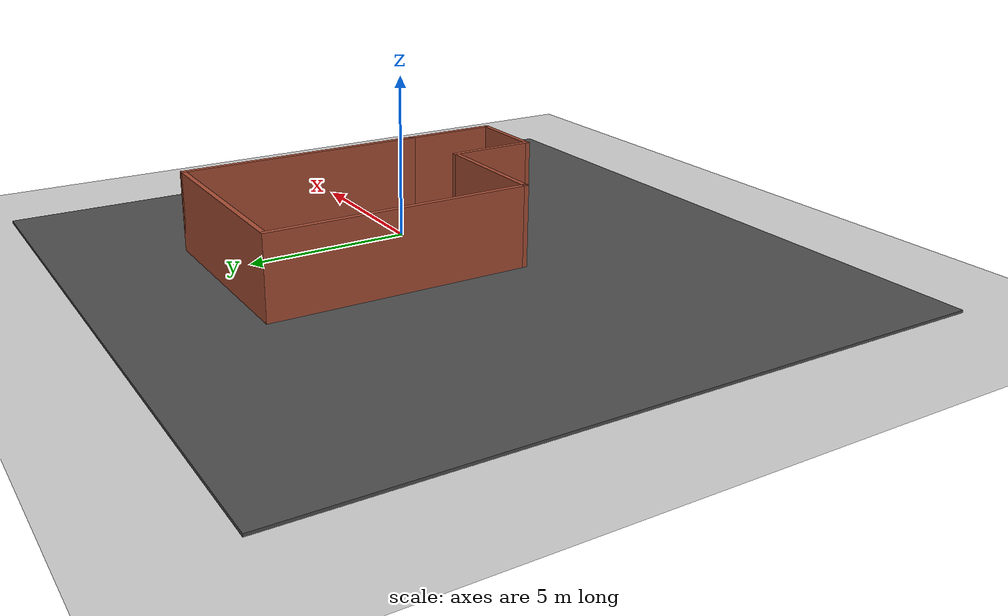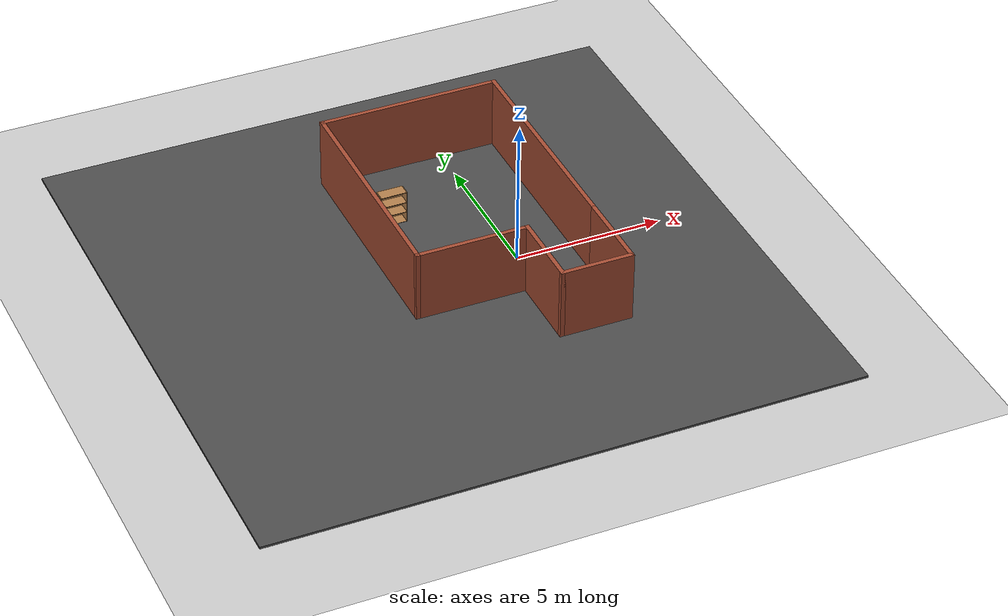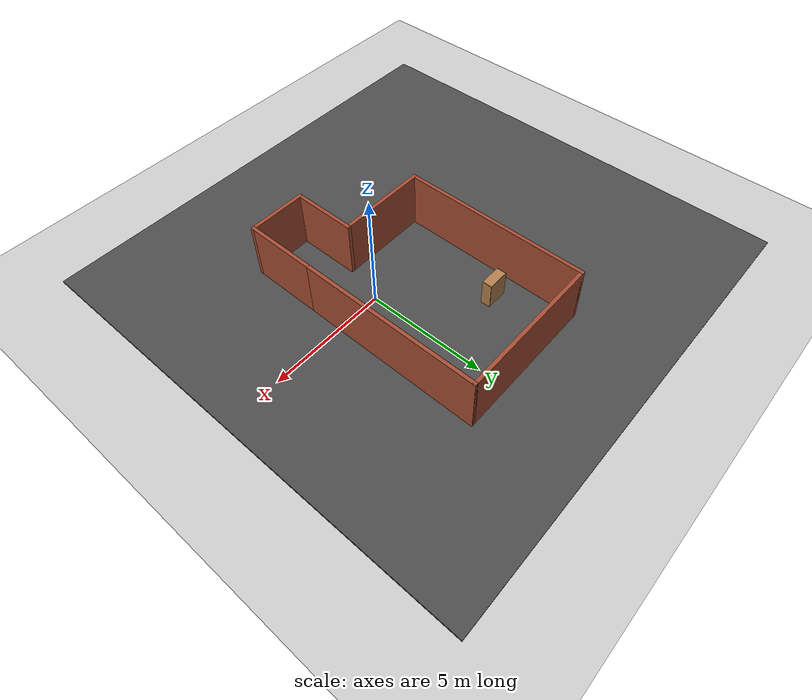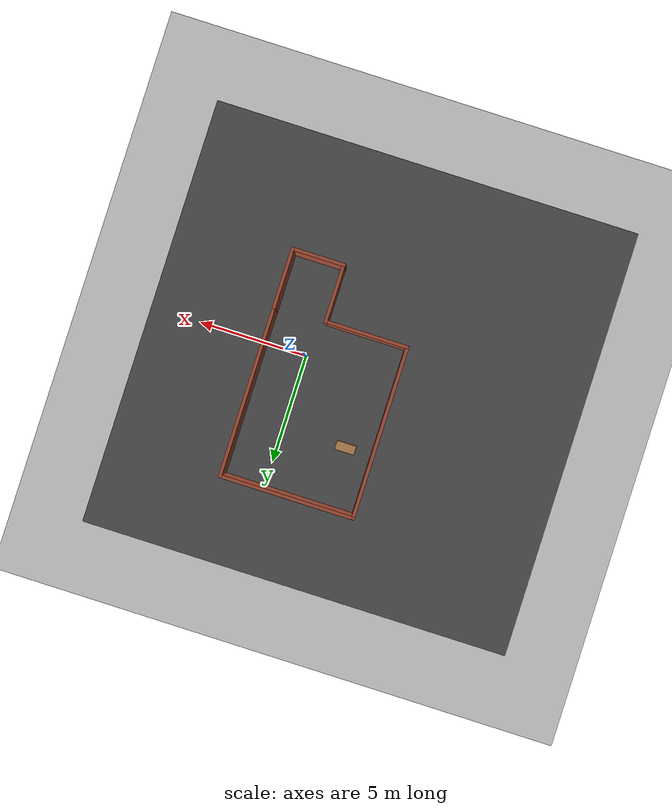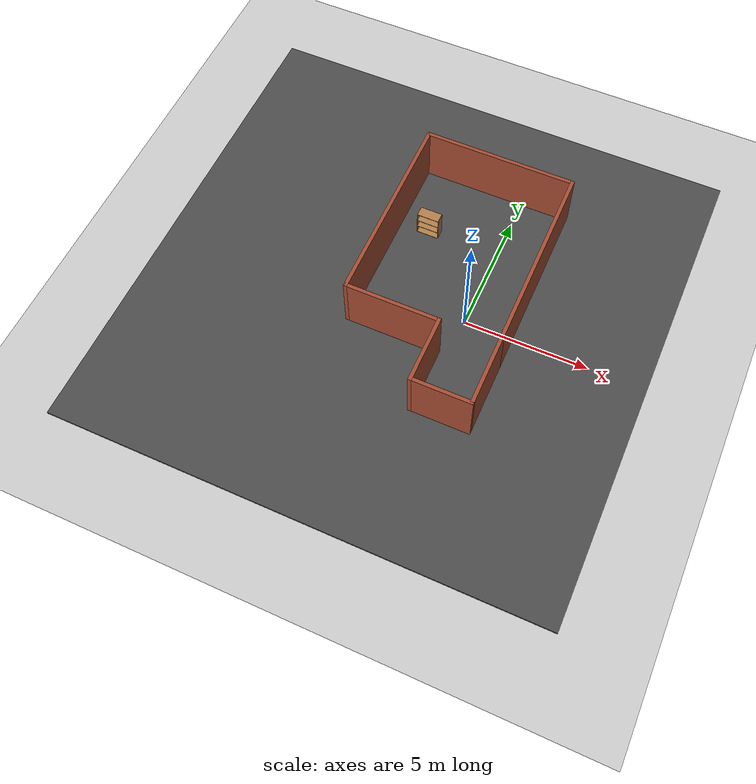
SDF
<sdf version="1.6">
 <world name="default">
  <light name="sun" type="directional">
   <pose>0 0 10 0 -0 0</pose>
   <diffuse>0.8 0.8 0.8 1</diffuse>
   <specular>0.1 0.1 0.1 1</specular>
   <attenuation>
    <range>1000</range>
    <constant>0.9</constant>
    <linear>0.01</linear>
    <quadratic>0.001</quadratic>
   </attenuation>
   <direction>-0.5 0.5 -1</direction>
  </light>
  <model name="ground_plane">
   <static>1</static>
   <link name="link">
    <collision name="collision">
     <geometry><plane><normal>0 0 1</normal><size>100 100</size></plane></geometry>
     <surface><friction><ode><mu>100</mu><mu2>50</mu2></ode></friction></surface>
    </collision>
    <visual name="visual">
     <cast_shadows>0</cast_shadows>
     <geometry><plane><normal>0 0 1</normal><size>100 100</size></plane></geometry>
     <material>
      <script><uri>file://media/materials/scripts/gazebo.material</uri><name>Gazebo/Grey</name></script>
     </material>
    </visual>
   </link>
  </model>
  <physics name="default_physics" default="0" type="ode">
   <max_step_size>0.01</max_step_size>
   <real_time_factor>1</real_time_factor>
   <real_time_update_rate>100</real_time_update_rate>
  </physics>
  <gravity>0 0 -9.8</gravity>
  <magnetic_field>6e-06 2.3e-05 -4.2e-05</magnetic_field>
  <atmosphere type="adiabatic"/>
  <scene><ambient>0.4 0.4 0.4 1</ambient><background>0.7 0.7 0.7 1</background><shadows>1</shadows></scene>
  <spherical_coordinates>
   <surface_model>EARTH_WGS84</surface_model>
   <latitude_deg>0</latitude_deg>
   <longitude_deg>0</longitude_deg>
   <elevation>0</elevation>
   <heading_deg>0</heading_deg>
  </spherical_coordinates>
  <model name="bookshelf">
   <static>1</static>
   <link name="link">
    <inertial><mass>1</mass></inertial>
    <collision name="back">
     <pose>0 0.005 0.6 0 -0 0</pose>
     <geometry><box><size>0.9 0.01 1.2</size></box></geometry>
    </collision>
    <visual name="visual1">
     <pose>0 0.005 0.6 0 -0 0</pose>
     <geometry><box><size>0.9 0.01 1.2</size></box></geometry>
     <material>
      <script><uri>file://media/materials/scripts/gazebo.material</uri><name>Gazebo/Wood</name></script>
     </material>
    </visual>
    <collision name="left_side">
     <pose>0.45 -0.195 0.6 0 -0 0</pose>
     <geometry><box><size>0.02 0.4 1.2</size></box></geometry>
    </collision>
    <visual name="visual2">
     <pose>0.45 -0.195 0.6 0 -0 0</pose>
     <geometry><box><size>0.02 0.4 1.2</size></box></geometry>
     <material>
      <script><uri>file://media/materials/scripts/gazebo.material</uri><name>Gazebo/Wood</name></script>
     </material>
    </visual>
    <collision name="right_side">
     <pose>-0.45 -0.195 0.6 0 -0 0</pose>
     <geometry><box><size>0.02 0.4 1.2</size></box></geometry>
    </collision>
    <visual name="visual3">
     <pose>-0.45 -0.195 0.6 0 -0 0</pose>
     <geometry><box><size>0.02 0.4 1.2</size></box></geometry>
     <material>
      <script><uri>file://media/materials/scripts/gazebo.material</uri><name>Gazebo/Wood</name></script>
     </material>
    </visual>
    <collision name="bottom">
     <pose>0 -0.195 0.03 0 -0 0</pose>
     <geometry><box><size>0.88 0.4 0.06</size></box></geometry>
    </collision>
    <visual name="visual4">
     <pose>0 -0.195 0.03 0 -0 0</pose>
     <geometry><box><size>0.88 0.4 0.06</size></box></geometry>
     <material>
      <script><uri>file://media/materials/scripts/gazebo.material</uri><name>Gazebo/Wood</name></script>
     </material>
    </visual>
    <collision name="top">
     <pose>0 -0.195 1.19 0 -0 0</pose>
     <geometry><box><size>0.88 0.4 0.02</size></box></geometry>
    </collision>
    <visual name="visual5">
     <pose>0 -0.195 1.19 0 -0 0</pose>
     <geometry><box><size>0.88 0.4 0.02</size></box></geometry>
     <material>
      <script><uri>file://media/materials/scripts/gazebo.material</uri><name>Gazebo/Wood</name></script>
     </material>
    </visual>
    <collision name="low_shelf">
     <pose>0 -0.195 0.43 0 -0 0</pose>
     <geometry><box><size>0.88 0.4 0.02</size></box></geometry>
    </collision>
    <visual name="visual6">
     <pose>0 -0.195 0.43 0 -0 0</pose>
     <geometry><box><size>0.88 0.4 0.02</size></box></geometry>
     <material>
      <script><uri>file://media/materials/scripts/gazebo.material</uri><name>Gazebo/Wood</name></script>
     </material>
    </visual>
    <collision name="high_shelf">
     <pose>0 -0.195 0.8 0 -0 0</pose>
     <geometry><box><size>0.88 0.4 0.02</size></box></geometry>
    </collision>
    <visual name="visual7">
     <pose>0 -0.195 0.8 0 -0 0</pose>
     <geometry><box><size>0.88 0.4 0.02</size></box></geometry>
     <material>
      <script><uri>file://media/materials/scripts/gazebo.material</uri><name>Gazebo/Wood</name></script>
     </material>
    </visual>
   </link>
   <pose>-2.94927 3.56845 0 0 -0 0</pose>
  </model>
  <model name="asphalt_plane">
   <static>1</static>
   <link name="link">
    <collision name="collision"><geometry><box><size>20 20 0.1</size></box></geometry></collision>
    <visual name="visual">
     <cast_shadows>0</cast_shadows>
     <geometry><box><size>20 20 0.1</size></box></geometry>
     <material>
      <script>
       <uri>model://asphalt_plane/materials/scripts</uri>
       <uri>model://asphalt_plane/materials/textures</uri>
       <name>vrc/asphalt</name>
      </script>
     </material>
    </visual>
   </link>
   <pose>-2.64434 0.163321 0 0 -0 0</pose>
  </model>
  <model name="indoor1">
   <pose>-1.15 0.955 0 0 -0 0</pose>
   <link name="Wall_0">
    <collision name="Wall_0_Collision">
     <geometry><box><size>3.75 0.15 2.5</size></box></geometry>
     <pose>0 0 1.25 0 -0 0</pose>
    </collision>
    <visual name="Wall_0_Visual">
     <pose>0 0 1.25 0 -0 0</pose>
     <geometry><box><size>3.75 0.15 2.5</size></box></geometry>
     <material>
      <script><uri>file://media/materials/scripts/gazebo.material</uri><name>Gazebo/Bricks</name></script>
      <ambient>1 1 1 1</ambient>
     </material>
    </visual>
    <pose>-1.25 -2.625 0 0 -0 3.14159</pose>
   </link>
   <link name="Wall_1">
    <collision name="Wall_1_Collision">
     <geometry><box><size>8 0.15 2.5</size></box></geometry>
     <pose>0 0 1.25 0 -0 0</pose>
    </collision>
    <visual name="Wall_1_Visual">
     <pose>0 0 1.25 0 -0 0</pose>
     <geometry><box><size>8 0.15 2.5</size></box></geometry>
     <material>
      <script><uri>file://media/materials/scripts/gazebo.material</uri><name>Gazebo/Bricks</name></script>
      <ambient>1 1 1 1</ambient>
     </material>
    </visual>
    <pose>-3.05 1.3 0 0 -0 1.5708</pose>
   </link>
   <link name="Wall_2">
    <collision name="Wall_2_Collision">
     <geometry><box><size>6.25 0.15 2.5</size></box></geometry>
     <pose>0 0 1.25 0 -0 0</pose>
    </collision>
    <visual name="Wall_2_Visual">
     <pose>0 0 1.25 0 -0 0</pose>
     <geometry><box><size>6.25 0.15 2.5</size></box></geometry>
     <material>
      <script><uri>file://media/materials/scripts/gazebo.material</uri><name>Gazebo/Bricks</name></script>
      <ambient>1 1 1 1</ambient>
     </material>
    </visual>
    <pose>0 5.225 0 0 -0 0</pose>
   </link>
   <link name="Wall_3">
    <collision name="Wall_3_Collision">
     <geometry><box><size>7.75 0.15 2.5</size></box></geometry>
     <pose>0 0 1.25 0 -0 0</pose>
    </collision>
    <visual name="Wall_3_Visual">
     <pose>0 0 1.25 0 -0 0</pose>
     <geometry><box><size>7.75 0.15 2.5</size></box></geometry>
     <material>
      <script><uri>file://media/materials/scripts/gazebo.material</uri><name>Gazebo/Bricks</name></script>
      <ambient>1 1 1 1</ambient>
     </material>
    </visual>
    <pose>3.05 1.425 0 0 0 -1.5708</pose>
   </link>
   <link name="Wall_4">
    <collision name="Wall_4_Collision">
     <geometry><box><size>3 0.15 2.5</size></box></geometry>
     <pose>0 0 1.25 0 -0 0</pose>
    </collision>
    <visual name="Wall_4_Visual">
     <pose>0 0 1.25 0 -0 0</pose>
     <geometry><box><size>3 0.15 2.5</size></box></geometry>
     <material>
      <script><uri>file://media/materials/scripts/gazebo.material</uri><name>Gazebo/Bricks</name></script>
      <ambient>1 1 1 1</ambient>
     </material>
    </visual>
    <pose>3.05 -3.8 0 0 0 -1.5708</pose>
   </link>
   <link name="Wall_5">
    <collision name="Wall_5_Collision">
     <geometry><box><size>2.5 0.15 2.5</size></box></geometry>
     <pose>0 0 1.25 0 -0 0</pose>
    </collision>
    <visual name="Wall_5_Visual">
     <pose>0 0 1.25 0 -0 0</pose>
     <geometry><box><size>2.5 0.15 2.5</size></box></geometry>
     <material>
      <script><uri>file://media/materials/scripts/gazebo.material</uri><name>Gazebo/Bricks</name></script>
      <ambient>1 1 1 1</ambient>
     </material>
    </visual>
    <pose>1.875 -5.225 0 0 -0 3.14159</pose>
   </link>
   <link name="Wall_6">
    <collision name="Wall_6_Collision">
     <geometry><box><size>2.75 0.15 2.5</size></box></geometry>
     <pose>0 0 1.25 0 -0 0</pose>
    </collision>
    <visual name="Wall_6_Visual">
     <pose>0 0 1.25 0 -0 0</pose>
     <geometry><box><size>2.75 0.15 2.5</size></box></geometry>
     <material>
      <script><uri>file://media/materials/scripts/gazebo.material</uri><name>Gazebo/Bricks</name></script>
      <ambient>1 1 1 1</ambient>
     </material>
    </visual>
    <pose>0.7 -3.925 0 0 -0 1.5708</pose>
   </link>
   <static>1</static>
  </model>
 </world>
</sdf>
